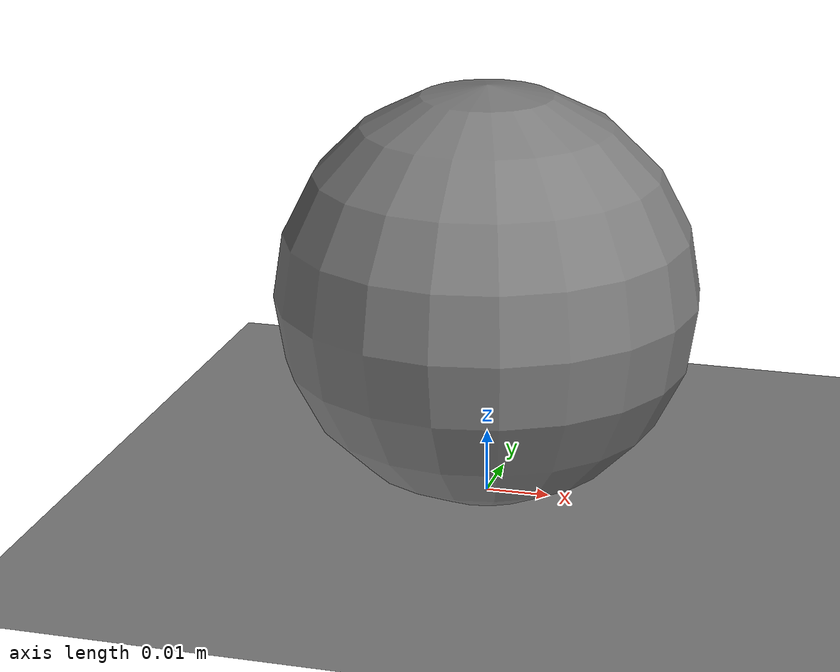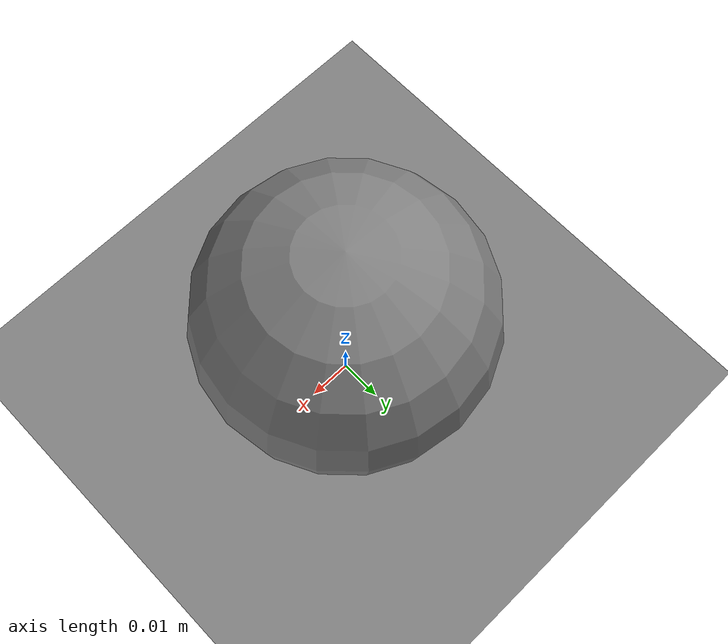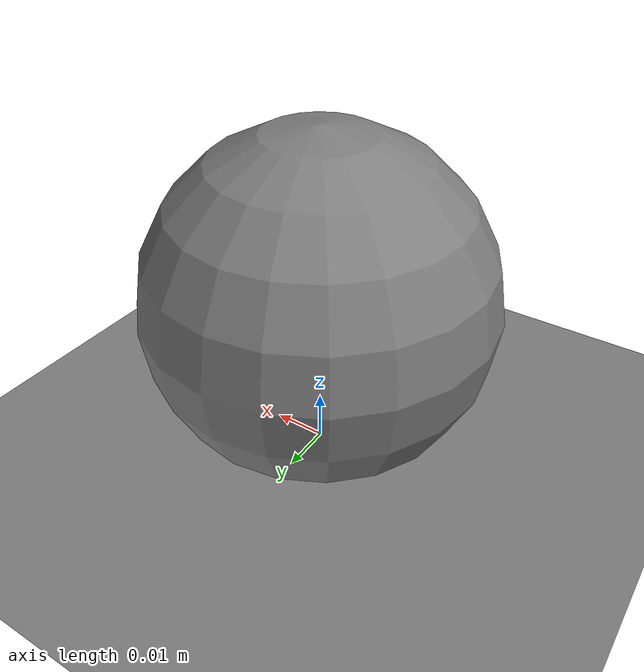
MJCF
<mujoco model="elliptic_contact">
  <option timestep="1e-5" cone="elliptic"/>
  <compiler angle="radian"/>
  <worldbody>
    <geom name="floor" type="plane" size="2 2 0.1" pos="0 0 0"/>
    <body name="ball" pos="0 0 0.033">
      <freejoint/>
      <inertial pos="0 0 0" mass="0.057" diaginertia="4.0e-5 4.0e-5 4.0e-5"/>
      <geom name="ball" type="sphere" size="0.033"/>
    </body>
  </worldbody>
  <contact>
    <pair geom1="floor" geom2="ball" condim="3"
          friction="0.67 0.67 0.005 0.0001 0.0001" solref="0.001 0.08"/>
  </contact>
</mujoco>
